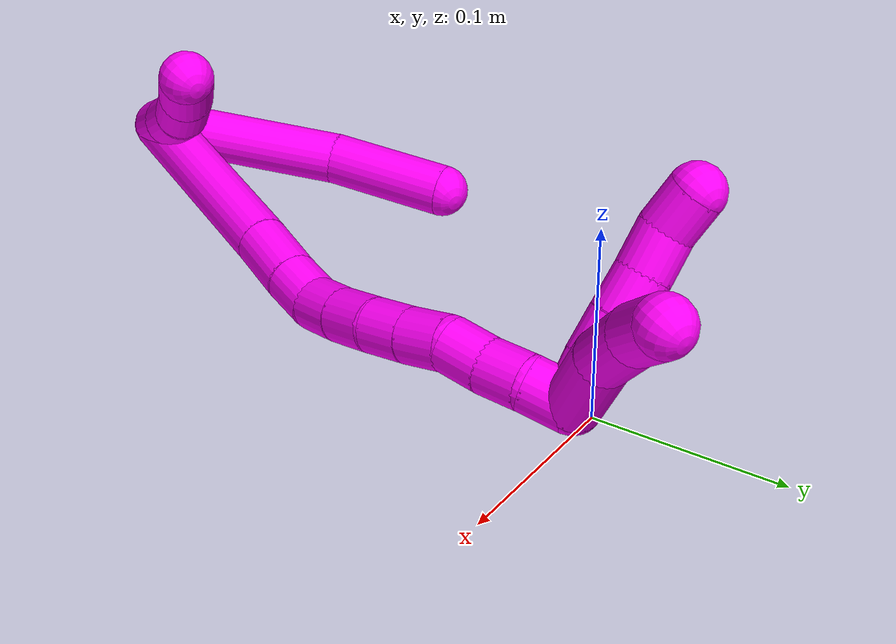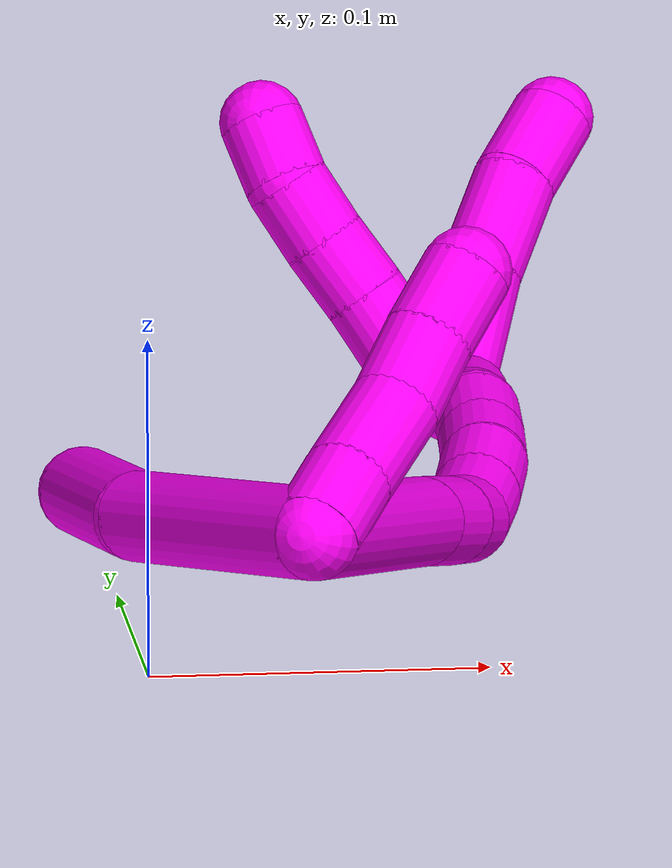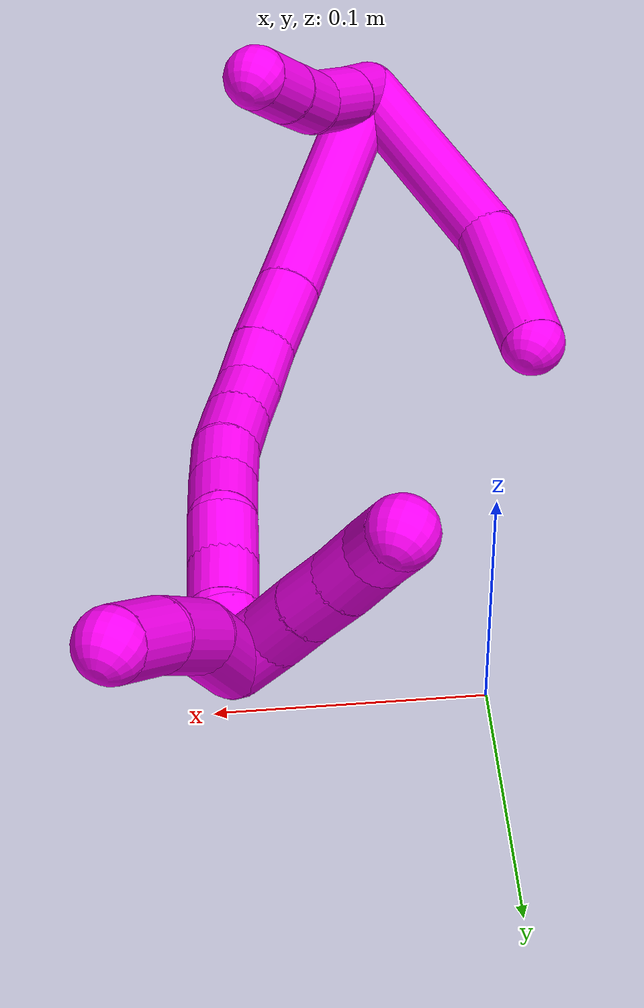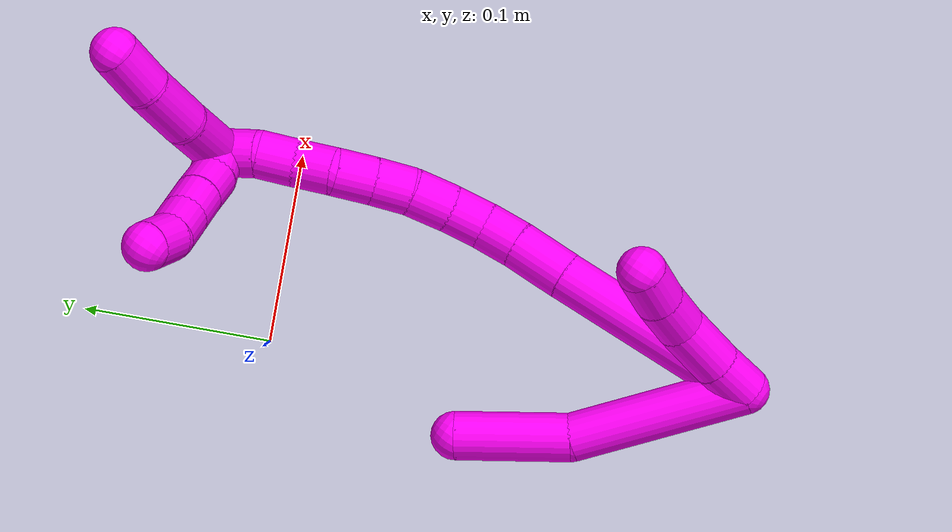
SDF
<sdf version="1.7">
 <world name="default">
  <model name="10">
   <static>0</static>
   <link name="10">
    <collision name="collision-cylinder-e_1_2_8">
     <pose>-0.027319 0.021123 -0.029589 -2.52162 -0.644423 1.61216</pose>
     <geometry><cylinder><radius>0.0125</radius><length>0.09095</length></cylinder></geometry>
     <surface>
      <friction><ode><mu>1.16</mu><mu2>1.16</mu2><slip1>0</slip1><slip2>0</slip2></ode></friction>
      <contact><ode><kp>1e+06</kp><kd>1</kd><max_vel>0</max_vel><min_depth>0.001</min_depth></ode></contact>
     </surface>
    </collision>
    <visual name="visual-cylinder-e_1_2_8">
     <pose>-0.027319 0.021123 -0.029589 -2.52162 -0.644423 1.61216</pose>
     <geometry><cylinder><radius>0.0125</radius><length>0.09095</length></cylinder></geometry>
     <material><ambient>1 0 0.964706 1</ambient></material>
    </visual>
    <collision name="collision-cylinder-e_2_8_6">
     <pose>-0.066333 0.053496 -0.083843 -2.71363 -0.407299 1.51987</pose>
     <geometry><cylinder><radius>0.0125</radius><length>0.05905</length></cylinder></geometry>
     <surface>
      <friction><ode><mu>1.16</mu><mu2>1.16</mu2><slip1>0</slip1><slip2>0</slip2></ode></friction>
      <contact><ode><kp>1e+06</kp><kd>1</kd><max_vel>0</max_vel><min_depth>0.001</min_depth></ode></contact>
     </surface>
    </collision>
    <visual name="visual-cylinder-e_2_8_6">
     <pose>-0.066333 0.053496 -0.083843 -2.71363 -0.407299 1.51987</pose>
     <geometry><cylinder><radius>0.0125</radius><length>0.05905</length></cylinder></geometry>
     <material><ambient>1 0 0.964706 1</ambient></material>
    </visual>
    <collision name="collision-cylinder-e_1_2_9">
     <pose>0.005409 0.00431 -0.009236 -2.70494 0.487879 -1.68552</pose>
     <geometry><cylinder><radius>0.0125</radius><length>0.023076</length></cylinder></geometry>
     <surface>
      <friction><ode><mu>1.16</mu><mu2>1.16</mu2><slip1>0</slip1><slip2>0</slip2></ode></friction>
      <contact><ode><kp>1e+06</kp><kd>1</kd><max_vel>0</max_vel><min_depth>0.001</min_depth></ode></contact>
     </surface>
    </collision>
    <visual name="visual-cylinder-e_1_2_9">
     <pose>0.005409 0.00431 -0.009236 -2.70494 0.487879 -1.68552</pose>
     <geometry><cylinder><radius>0.0125</radius><length>0.023076</length></cylinder></geometry>
     <material><ambient>1 0 0.964706 1</ambient></material>
    </visual>
    <collision name="collision-cylinder-e_2_9_10">
     <pose>0.018757 0.014049 -0.030415 -2.71499 0.544245 -1.82146</pose>
     <geometry><cylinder><radius>0.0125</radius><length>0.03067</length></cylinder></geometry>
     <surface>
      <friction><ode><mu>1.16</mu><mu2>1.16</mu2><slip1>0</slip1><slip2>0</slip2></ode></friction>
      <contact><ode><kp>1e+06</kp><kd>1</kd><max_vel>0</max_vel><min_depth>0.001</min_depth></ode></contact>
     </surface>
    </collision>
    <visual name="visual-cylinder-e_2_9_10">
     <pose>0.018757 0.014049 -0.030415 -2.71499 0.544245 -1.82146</pose>
     <geometry><cylinder><radius>0.0125</radius><length>0.03067</length></cylinder></geometry>
     <material><ambient>1 0 0.964706 1</ambient></material>
    </visual>
    <collision name="collision-cylinder-e_3_10_11">
     <pose>0.034193 0.024958 -0.04936 -2.47749 0.700427 -1.62838</pose>
     <geometry><cylinder><radius>0.0125</radius><length>0.023257</length></cylinder></geometry>
     <surface>
      <friction><ode><mu>1.16</mu><mu2>1.16</mu2><slip1>0</slip1><slip2>0</slip2></ode></friction>
      <contact><ode><kp>1e+06</kp><kd>1</kd><max_vel>0</max_vel><min_depth>0.001</min_depth></ode></contact>
     </surface>
    </collision>
    <visual name="visual-cylinder-e_3_10_11">
     <pose>0.034193 0.024958 -0.04936 -2.47749 0.700427 -1.62838</pose>
     <geometry><cylinder><radius>0.0125</radius><length>0.023257</length></cylinder></geometry>
     <material><ambient>1 0 0.964706 1</ambient></material>
    </visual>
    <collision name="collision-cylinder-e_4_11_5">
     <pose>0.049815 0.035349 -0.062845 -2.49334 0.785013 -1.77809</pose>
     <geometry><cylinder><radius>0.0125</radius><length>0.022996</length></cylinder></geometry>
     <surface>
      <friction><ode><mu>1.16</mu><mu2>1.16</mu2><slip1>0</slip1><slip2>0</slip2></ode></friction>
      <contact><ode><kp>1e+06</kp><kd>1</kd><max_vel>0</max_vel><min_depth>0.001</min_depth></ode></contact>
     </surface>
    </collision>
    <visual name="visual-cylinder-e_4_11_5">
     <pose>0.049815 0.035349 -0.062845 -2.49334 0.785013 -1.77809</pose>
     <geometry><cylinder><radius>0.0125</radius><length>0.022996</length></cylinder></geometry>
     <material><ambient>1 0 0.964706 1</ambient></material>
    </visual>
    <collision name="collision-cylinder-e_1_2_12">
     <pose>-0.00212 -0.000241 -0.053875 3.13712 -0.039333 -2.91525</pose>
     <geometry><cylinder><radius>0.0125</radius><length>0.107835</length></cylinder></geometry>
     <surface>
      <friction><ode><mu>1.16</mu><mu2>1.16</mu2><slip1>0</slip1><slip2>0</slip2></ode></friction>
      <contact><ode><kp>1e+06</kp><kd>1</kd><max_vel>0</max_vel><min_depth>0.001</min_depth></ode></contact>
     </surface>
    </collision>
    <visual name="visual-cylinder-e_1_2_12">
     <pose>-0.00212 -0.000241 -0.053875 3.13712 -0.039333 -2.91525</pose>
     <geometry><cylinder><radius>0.0125</radius><length>0.107835</length></cylinder></geometry>
     <material><ambient>1 0 0.964706 1</ambient></material>
    </visual>
    <collision name="collision-cylinder-e_2_12_13">
     <pose>-0.004773 -0.000942 -0.122334 3.11005 -0.036463 -1.71515</pose>
     <geometry><cylinder><radius>0.0125</radius><length>0.029201</length></cylinder></geometry>
     <surface>
      <friction><ode><mu>1.16</mu><mu2>1.16</mu2><slip1>0</slip1><slip2>0</slip2></ode></friction>
      <contact><ode><kp>1e+06</kp><kd>1</kd><max_vel>0</max_vel><min_depth>0.001</min_depth></ode></contact>
     </surface>
    </collision>
    <visual name="visual-cylinder-e_2_12_13">
     <pose>-0.004773 -0.000942 -0.122334 3.11005 -0.036463 -1.71515</pose>
     <geometry><cylinder><radius>0.0125</radius><length>0.029201</length></cylinder></geometry>
     <material><ambient>1 0 0.964706 1</ambient></material>
    </visual>
    <collision name="collision-cylinder-e_3_13_14">
     <pose>-0.006108 -0.001251 -0.14701 -3.12664 -0.07944 2.76967</pose>
     <geometry><cylinder><radius>0.0125</radius><length>0.020251</length></cylinder></geometry>
     <surface>
      <friction><ode><mu>1.16</mu><mu2>1.16</mu2><slip1>0</slip1><slip2>0</slip2></ode></friction>
      <contact><ode><kp>1e+06</kp><kd>1</kd><max_vel>0</max_vel><min_depth>0.001</min_depth></ode></contact>
     </surface>
    </collision>
    <visual name="visual-cylinder-e_3_13_14">
     <pose>-0.006108 -0.001251 -0.14701 -3.12664 -0.07944 2.76967</pose>
     <geometry><cylinder><radius>0.0125</radius><length>0.020251</length></cylinder></geometry>
     <material><ambient>1 0 0.964706 1</ambient></material>
    </visual>
    <collision name="collision-cylinder-e_4_14_15">
     <pose>-0.006046 0.002004 -0.166681 -2.82823 0.085786 -0.53055</pose>
     <geometry><cylinder><radius>0.0125</radius><length>0.020212</length></cylinder></geometry>
     <surface>
      <friction><ode><mu>1.16</mu><mu2>1.16</mu2><slip1>0</slip1><slip2>0</slip2></ode></friction>
      <contact><ode><kp>1e+06</kp><kd>1</kd><max_vel>0</max_vel><min_depth>0.001</min_depth></ode></contact>
     </surface>
    </collision>
    <visual name="visual-cylinder-e_4_14_15">
     <pose>-0.006046 0.002004 -0.166681 -2.82823 0.085786 -0.53055</pose>
     <geometry><cylinder><radius>0.0125</radius><length>0.020212</length></cylinder></geometry>
     <material><ambient>1 0 0.964706 1</ambient></material>
    </visual>
    <collision name="collision-cylinder-e_5_15_16">
     <pose>-0.004281 0.00922 -0.186274 -2.75194 0.082892 -0.414284</pose>
     <geometry><cylinder><radius>0.0125</radius><length>0.021726</length></cylinder></geometry>
     <surface>
      <friction><ode><mu>1.16</mu><mu2>1.16</mu2><slip1>0</slip1><slip2>0</slip2></ode></friction>
      <contact><ode><kp>1e+06</kp><kd>1</kd><max_vel>0</max_vel><min_depth>0.001</min_depth></ode></contact>
     </surface>
    </collision>
    <visual name="visual-cylinder-e_5_15_16">
     <pose>-0.004281 0.00922 -0.186274 -2.75194 0.082892 -0.414284</pose>
     <geometry><cylinder><radius>0.0125</radius><length>0.021726</length></cylinder></geometry>
     <material><ambient>1 0 0.964706 1</ambient></material>
    </visual>
    <collision name="collision-cylinder-e_6_16_17">
     <pose>-0.004062 0.017468 -0.205388 -2.71497 -0.06795 0.311281</pose>
     <geometry><cylinder><radius>0.0125</radius><length>0.020037</length></cylinder></geometry>
     <surface>
      <friction><ode><mu>1.16</mu><mu2>1.16</mu2><slip1>0</slip1><slip2>0</slip2></ode></friction>
      <contact><ode><kp>1e+06</kp><kd>1</kd><max_vel>0</max_vel><min_depth>0.001</min_depth></ode></contact>
     </surface>
    </collision>
    <visual name="visual-cylinder-e_6_16_17">
     <pose>-0.004062 0.017468 -0.205388 -2.71497 -0.06795 0.311281</pose>
     <geometry><cylinder><radius>0.0125</radius><length>0.020037</length></cylinder></geometry>
     <material><ambient>1 0 0.964706 1</ambient></material>
    </visual>
    <collision name="collision-cylinder-e_7_17_18">
     <pose>-0.00544 0.02634 -0.223612 -2.66288 -0.06782 0.276243</pose>
     <geometry><cylinder><radius>0.0125</radius><length>0.020609</length></cylinder></geometry>
     <surface>
      <friction><ode><mu>1.16</mu><mu2>1.16</mu2><slip1>0</slip1><slip2>0</slip2></ode></friction>
      <contact><ode><kp>1e+06</kp><kd>1</kd><max_vel>0</max_vel><min_depth>0.001</min_depth></ode></contact>
     </surface>
    </collision>
    <visual name="visual-cylinder-e_7_17_18">
     <pose>-0.00544 0.02634 -0.223612 -2.66288 -0.06782 0.276243</pose>
     <geometry><cylinder><radius>0.0125</radius><length>0.020609</length></cylinder></geometry>
     <material><ambient>1 0 0.964706 1</ambient></material>
    </visual>
    <collision name="collision-cylinder-e_8_18_19">
     <pose>-0.008977 0.033255 -0.242078 -2.91235 -0.287702 1.79848</pose>
     <geometry><cylinder><radius>0.0125</radius><length>0.020006</length></cylinder></geometry>
     <surface>
      <friction><ode><mu>1.16</mu><mu2>1.16</mu2><slip1>0</slip1><slip2>0</slip2></ode></friction>
      <contact><ode><kp>1e+06</kp><kd>1</kd><max_vel>0</max_vel><min_depth>0.001</min_depth></ode></contact>
     </surface>
    </collision>
    <visual name="visual-cylinder-e_8_18_19">
     <pose>-0.008977 0.033255 -0.242078 -2.91235 -0.287702 1.79848</pose>
     <geometry><cylinder><radius>0.0125</radius><length>0.020006</length></cylinder></geometry>
     <material><ambient>1 0 0.964706 1</ambient></material>
    </visual>
    <collision name="collision-cylinder-e_9_19_20">
     <pose>-0.013736 0.038584 -0.260728 -2.81536 -0.193056 1.06362</pose>
     <geometry><cylinder><radius>0.0125</radius><length>0.020028</length></cylinder></geometry>
     <surface>
      <friction><ode><mu>1.16</mu><mu2>1.16</mu2><slip1>0</slip1><slip2>0</slip2></ode></friction>
      <contact><ode><kp>1e+06</kp><kd>1</kd><max_vel>0</max_vel><min_depth>0.001</min_depth></ode></contact>
     </surface>
    </collision>
    <visual name="visual-cylinder-e_9_19_20">
     <pose>-0.013736 0.038584 -0.260728 -2.81536 -0.193056 1.06362</pose>
     <geometry><cylinder><radius>0.0125</radius><length>0.020028</length></cylinder></geometry>
     <material><ambient>1 0 0.964706 1</ambient></material>
    </visual>
    <collision name="collision-cylinder-e_10_20_1">
     <pose>-0.020202 0.044248 -0.278639 -2.85719 -0.469302 2.06237</pose>
     <geometry><cylinder><radius>0.0125</radius><length>0.020096</length></cylinder></geometry>
     <surface>
      <friction><ode><mu>1.16</mu><mu2>1.16</mu2><slip1>0</slip1><slip2>0</slip2></ode></friction>
      <contact><ode><kp>1e+06</kp><kd>1</kd><max_vel>0</max_vel><min_depth>0.001</min_depth></ode></contact>
     </surface>
    </collision>
    <visual name="visual-cylinder-e_10_20_1">
     <pose>-0.020202 0.044248 -0.278639 -2.85719 -0.469302 2.06237</pose>
     <geometry><cylinder><radius>0.0125</radius><length>0.020096</length></cylinder></geometry>
     <material><ambient>1 0 0.964706 1</ambient></material>
    </visual>
    <collision name="collision-cylinder-e_1_1_21">
     <pose>-0.011584 0.060059 -0.295051 -2.10194 0.706525 -1.14466</pose>
     <geometry><cylinder><radius>0.0125</radius><length>0.040547</length></cylinder></geometry>
     <surface>
      <friction><ode><mu>1.16</mu><mu2>1.16</mu2><slip1>0</slip1><slip2>0</slip2></ode></friction>
      <contact><ode><kp>1e+06</kp><kd>1</kd><max_vel>0</max_vel><min_depth>0.001</min_depth></ode></contact>
     </surface>
    </collision>
    <visual name="visual-cylinder-e_1_1_21">
     <pose>-0.011584 0.060059 -0.295051 -2.10194 0.706525 -1.14466</pose>
     <geometry><cylinder><radius>0.0125</radius><length>0.040547</length></cylinder></geometry>
     <material><ambient>1 0 0.964706 1</ambient></material>
    </visual>
    <collision name="collision-cylinder-e_2_21_22">
     <pose>0.011544 0.082135 -0.312286 -2.39155 0.658612 -1.42988</pose>
     <geometry><cylinder><radius>0.0125</radius><length>0.032571</length></cylinder></geometry>
     <surface>
      <friction><ode><mu>1.16</mu><mu2>1.16</mu2><slip1>0</slip1><slip2>0</slip2></ode></friction>
      <contact><ode><kp>1e+06</kp><kd>1</kd><max_vel>0</max_vel><min_depth>0.001</min_depth></ode></contact>
     </surface>
    </collision>
    <visual name="visual-cylinder-e_2_21_22">
     <pose>0.011544 0.082135 -0.312286 -2.39155 0.658612 -1.42988</pose>
     <geometry><cylinder><radius>0.0125</radius><length>0.032571</length></cylinder></geometry>
     <material><ambient>1 0 0.964706 1</ambient></material>
    </visual>
    <collision name="collision-cylinder-e_3_22_4">
     <pose>0.029719 0.096373 -0.330846 -2.60301 0.656898 -1.78014</pose>
     <geometry><cylinder><radius>0.0125</radius><length>0.026881</length></cylinder></geometry>
     <surface>
      <friction><ode><mu>1.16</mu><mu2>1.16</mu2><slip1>0</slip1><slip2>0</slip2></ode></friction>
      <contact><ode><kp>1e+06</kp><kd>1</kd><max_vel>0</max_vel><min_depth>0.001</min_depth></ode></contact>
     </surface>
    </collision>
    <visual name="visual-cylinder-e_3_22_4">
     <pose>0.029719 0.096373 -0.330846 -2.60301 0.656898 -1.78014</pose>
     <geometry><cylinder><radius>0.0125</radius><length>0.026881</length></cylinder></geometry>
     <material><ambient>1 0 0.964706 1</ambient></material>
    </visual>
    <collision name="collision-cylinder-e_1_1_23">
     <pose>-0.025338 0.056116 -0.283752 -1.21374 -0.059256 0.041146</pose>
     <geometry><cylinder><radius>0.0125</radius><length>0.02</length></cylinder></geometry>
     <surface>
      <friction><ode><mu>1.16</mu><mu2>1.16</mu2><slip1>0</slip1><slip2>0</slip2></ode></friction>
      <contact><ode><kp>1e+06</kp><kd>1</kd><max_vel>0</max_vel><min_depth>0.001</min_depth></ode></contact>
     </surface>
    </collision>
    <visual name="visual-cylinder-e_1_1_23">
     <pose>-0.025338 0.056116 -0.283752 -1.21374 -0.059256 0.041146</pose>
     <geometry><cylinder><radius>0.0125</radius><length>0.02</length></cylinder></geometry>
     <material><ambient>1 0 0.964706 1</ambient></material>
    </visual>
    <collision name="collision-cylinder-e_2_23_24">
     <pose>-0.025096 0.075328 -0.278817 -1.42525 0.083566 -0.072221</pose>
     <geometry><cylinder><radius>0.0125</radius><length>0.02</length></cylinder></geometry>
     <surface>
      <friction><ode><mu>1.16</mu><mu2>1.16</mu2><slip1>0</slip1><slip2>0</slip2></ode></friction>
      <contact><ode><kp>1e+06</kp><kd>1</kd><max_vel>0</max_vel><min_depth>0.001</min_depth></ode></contact>
     </surface>
    </collision>
    <visual name="visual-cylinder-e_2_23_24">
     <pose>-0.025096 0.075328 -0.278817 -1.42525 0.083566 -0.072221</pose>
     <geometry><cylinder><radius>0.0125</radius><length>0.02</length></cylinder></geometry>
     <material><ambient>1 0 0.964706 1</ambient></material>
    </visual>
    <collision name="collision-cylinder-e_3_24_25">
     <pose>-0.023884 0.095037 -0.275682 -1.40089 0.037666 -0.031755</pose>
     <geometry><cylinder><radius>0.0125</radius><length>0.02</length></cylinder></geometry>
     <surface>
      <friction><ode><mu>1.16</mu><mu2>1.16</mu2><slip1>0</slip1><slip2>0</slip2></ode></friction>
      <contact><ode><kp>1e+06</kp><kd>1</kd><max_vel>0</max_vel><min_depth>0.001</min_depth></ode></contact>
     </surface>
    </collision>
    <visual name="visual-cylinder-e_3_24_25">
     <pose>-0.023884 0.095037 -0.275682 -1.40089 0.037666 -0.031755</pose>
     <geometry><cylinder><radius>0.0125</radius><length>0.02</length></cylinder></geometry>
     <material><ambient>1 0 0.964706 1</ambient></material>
    </visual>
    <collision name="collision-cylinder-e_4_25_26">
     <pose>-0.02251 0.114685 -0.272265 -1.39633 0.099935 -0.083882</pose>
     <geometry><cylinder><radius>0.0125</radius><length>0.02</length></cylinder></geometry>
     <surface>
      <friction><ode><mu>1.16</mu><mu2>1.16</mu2><slip1>0</slip1><slip2>0</slip2></ode></friction>
      <contact><ode><kp>1e+06</kp><kd>1</kd><max_vel>0</max_vel><min_depth>0.001</min_depth></ode></contact>
     </surface>
    </collision>
    <visual name="visual-cylinder-e_4_25_26">
     <pose>-0.02251 0.114685 -0.272265 -1.39633 0.099935 -0.083882</pose>
     <geometry><cylinder><radius>0.0125</radius><length>0.02</length></cylinder></geometry>
     <material><ambient>1 0 0.964706 1</ambient></material>
    </visual>
    <collision name="collision-cylinder-e_5_26_3">
     <pose>-0.0195 0.134186 -0.271892 -1.70939 0.202639 -0.232612</pose>
     <geometry><cylinder><radius>0.0125</radius><length>0.02</length></cylinder></geometry>
     <surface>
      <friction><ode><mu>1.16</mu><mu2>1.16</mu2><slip1>0</slip1><slip2>0</slip2></ode></friction>
      <contact><ode><kp>1e+06</kp><kd>1</kd><max_vel>0</max_vel><min_depth>0.001</min_depth></ode></contact>
     </surface>
    </collision>
    <visual name="visual-cylinder-e_5_26_3">
     <pose>-0.0195 0.134186 -0.271892 -1.70939 0.202639 -0.232612</pose>
     <geometry><cylinder><radius>0.0125</radius><length>0.02</length></cylinder></geometry>
     <material><ambient>1 0 0.964706 1</ambient></material>
    </visual>
    <collision name="collision-sphere-3">
     <pose>-0.017487 0.143887 -0.273245 0 -0 0</pose>
     <geometry><sphere><radius>0.0125</radius></sphere></geometry>
     <surface>
      <friction><ode><mu>1.16</mu><mu2>1.16</mu2><slip1>0</slip1><slip2>0</slip2></ode></friction>
      <contact><ode><kp>1e+06</kp><kd>1</kd><max_vel>0</max_vel><min_depth>0.001</min_depth></ode></contact>
     </surface>
    </collision>
    <visual name="visual-sphere-3">
     <pose>-0.017487 0.143887 -0.273245 0 -0 0</pose>
     <geometry><sphere><radius>0.0125</radius></sphere></geometry>
     <material><ambient>1 0 0.964706 1</ambient></material>
    </visual>
    <collision name="collision-sphere-26">
     <pose>-0.021512 0.124484 -0.270538 0 -0 0</pose>
     <geometry><sphere><radius>0.0125</radius></sphere></geometry>
     <surface>
      <friction><ode><mu>1.16</mu><mu2>1.16</mu2><slip1>0</slip1><slip2>0</slip2></ode></friction>
      <contact><ode><kp>1e+06</kp><kd>1</kd><max_vel>0</max_vel><min_depth>0.001</min_depth></ode></contact>
     </surface>
    </collision>
    <visual name="visual-sphere-26">
     <pose>-0.021512 0.124484 -0.270538 0 -0 0</pose>
     <geometry><sphere><radius>0.0125</radius></sphere></geometry>
     <material><ambient>1 0 0.964706 1</ambient></material>
    </visual>
    <collision name="collision-sphere-25">
     <pose>-0.023508 0.104886 -0.273993 0 -0 0</pose>
     <geometry><sphere><radius>0.0125</radius></sphere></geometry>
     <surface>
      <friction><ode><mu>1.16</mu><mu2>1.16</mu2><slip1>0</slip1><slip2>0</slip2></ode></friction>
      <contact><ode><kp>1e+06</kp><kd>1</kd><max_vel>0</max_vel><min_depth>0.001</min_depth></ode></contact>
     </surface>
    </collision>
    <visual name="visual-sphere-25">
     <pose>-0.023508 0.104886 -0.273993 0 -0 0</pose>
     <geometry><sphere><radius>0.0125</radius></sphere></geometry>
     <material><ambient>1 0 0.964706 1</ambient></material>
    </visual>
    <collision name="collision-sphere-24">
     <pose>-0.024261 0.085188 -0.277372 0 -0 0</pose>
     <geometry><sphere><radius>0.0125</radius></sphere></geometry>
     <surface>
      <friction><ode><mu>1.16</mu><mu2>1.16</mu2><slip1>0</slip1><slip2>0</slip2></ode></friction>
      <contact><ode><kp>1e+06</kp><kd>1</kd><max_vel>0</max_vel><min_depth>0.001</min_depth></ode></contact>
     </surface>
    </collision>
    <visual name="visual-sphere-24">
     <pose>-0.024261 0.085188 -0.277372 0 -0 0</pose>
     <geometry><sphere><radius>0.0125</radius></sphere></geometry>
     <material><ambient>1 0 0.964706 1</ambient></material>
    </visual>
    <collision name="collision-sphere-23">
     <pose>-0.02593 0.065469 -0.280262 0 -0 0</pose>
     <geometry><sphere><radius>0.0125</radius></sphere></geometry>
     <surface>
      <friction><ode><mu>1.16</mu><mu2>1.16</mu2><slip1>0</slip1><slip2>0</slip2></ode></friction>
      <contact><ode><kp>1e+06</kp><kd>1</kd><max_vel>0</max_vel><min_depth>0.001</min_depth></ode></contact>
     </surface>
    </collision>
    <visual name="visual-sphere-23">
     <pose>-0.02593 0.065469 -0.280262 0 -0 0</pose>
     <geometry><sphere><radius>0.0125</radius></sphere></geometry>
     <material><ambient>1 0 0.964706 1</ambient></material>
    </visual>
    <collision name="collision-sphere-4">
     <pose>0.037927 0.101833 -0.339983 0 -0 0</pose>
     <geometry><sphere><radius>0.0125</radius></sphere></geometry>
     <surface>
      <friction><ode><mu>1.16</mu><mu2>1.16</mu2><slip1>0</slip1><slip2>0</slip2></ode></friction>
      <contact><ode><kp>1e+06</kp><kd>1</kd><max_vel>0</max_vel><min_depth>0.001</min_depth></ode></contact>
     </surface>
    </collision>
    <visual name="visual-sphere-4">
     <pose>0.037927 0.101833 -0.339983 0 -0 0</pose>
     <geometry><sphere><radius>0.0125</radius></sphere></geometry>
     <material><ambient>1 0 0.964706 1</ambient></material>
    </visual>
    <collision name="collision-sphere-22">
     <pose>0.021511 0.090914 -0.321709 0 -0 0</pose>
     <geometry><sphere><radius>0.0125</radius></sphere></geometry>
     <surface>
      <friction><ode><mu>1.16</mu><mu2>1.16</mu2><slip1>0</slip1><slip2>0</slip2></ode></friction>
      <contact><ode><kp>1e+06</kp><kd>1</kd><max_vel>0</max_vel><min_depth>0.001</min_depth></ode></contact>
     </surface>
    </collision>
    <visual name="visual-sphere-22">
     <pose>0.021511 0.090914 -0.321709 0 -0 0</pose>
     <geometry><sphere><radius>0.0125</radius></sphere></geometry>
     <material><ambient>1 0 0.964706 1</ambient></material>
    </visual>
    <collision name="collision-sphere-21">
     <pose>0.001577 0.073355 -0.302862 0 -0 0</pose>
     <geometry><sphere><radius>0.0125</radius></sphere></geometry>
     <surface>
      <friction><ode><mu>1.16</mu><mu2>1.16</mu2><slip1>0</slip1><slip2>0</slip2></ode></friction>
      <contact><ode><kp>1e+06</kp><kd>1</kd><max_vel>0</max_vel><min_depth>0.001</min_depth></ode></contact>
     </surface>
    </collision>
    <visual name="visual-sphere-21">
     <pose>0.001577 0.073355 -0.302862 0 -0 0</pose>
     <geometry><sphere><radius>0.0125</radius></sphere></geometry>
     <material><ambient>1 0 0.964706 1</ambient></material>
    </visual>
    <collision name="collision-sphere-1">
     <pose>-0.024746 0.046763 -0.287241 0 -0 0</pose>
     <geometry><sphere><radius>0.0125</radius></sphere></geometry>
     <surface>
      <friction><ode><mu>1.16</mu><mu2>1.16</mu2><slip1>0</slip1><slip2>0</slip2></ode></friction>
      <contact><ode><kp>1e+06</kp><kd>1</kd><max_vel>0</max_vel><min_depth>0.001</min_depth></ode></contact>
     </surface>
    </collision>
    <visual name="visual-sphere-1">
     <pose>-0.024746 0.046763 -0.287241 0 -0 0</pose>
     <geometry><sphere><radius>0.0125</radius></sphere></geometry>
     <material><ambient>1 0 0.964706 1</ambient></material>
    </visual>
    <collision name="collision-sphere-11">
     <pose>0.041688 0.030438 -0.056361 0 -0 0</pose>
     <geometry><sphere><radius>0.0125</radius></sphere></geometry>
     <surface>
      <friction><ode><mu>1.16</mu><mu2>1.16</mu2><slip1>0</slip1><slip2>0</slip2></ode></friction>
      <contact><ode><kp>1e+06</kp><kd>1</kd><max_vel>0</max_vel><min_depth>0.001</min_depth></ode></contact>
     </surface>
    </collision>
    <visual name="visual-sphere-11">
     <pose>0.041688 0.030438 -0.056361 0 -0 0</pose>
     <geometry><sphere><radius>0.0125</radius></sphere></geometry>
     <material><ambient>1 0 0.964706 1</ambient></material>
    </visual>
    <collision name="collision-sphere-10">
     <pose>0.026697 0.019478 -0.042359 0 -0 0</pose>
     <geometry><sphere><radius>0.0125</radius></sphere></geometry>
     <surface>
      <friction><ode><mu>1.16</mu><mu2>1.16</mu2><slip1>0</slip1><slip2>0</slip2></ode></friction>
      <contact><ode><kp>1e+06</kp><kd>1</kd><max_vel>0</max_vel><min_depth>0.001</min_depth></ode></contact>
     </surface>
    </collision>
    <visual name="visual-sphere-10">
     <pose>0.026697 0.019478 -0.042359 0 -0 0</pose>
     <geometry><sphere><radius>0.0125</radius></sphere></geometry>
     <material><ambient>1 0 0.964706 1</ambient></material>
    </visual>
    <collision name="collision-sphere-6">
     <pose>-0.078029 0.064747 -0.108507 0 -0 0</pose>
     <geometry><sphere><radius>0.0125</radius></sphere></geometry>
     <surface>
      <friction><ode><mu>1.16</mu><mu2>1.16</mu2><slip1>0</slip1><slip2>0</slip2></ode></friction>
      <contact><ode><kp>1e+06</kp><kd>1</kd><max_vel>0</max_vel><min_depth>0.001</min_depth></ode></contact>
     </surface>
    </collision>
    <visual name="visual-sphere-6">
     <pose>-0.078029 0.064747 -0.108507 0 -0 0</pose>
     <geometry><sphere><radius>0.0125</radius></sphere></geometry>
     <material><ambient>1 0 0.964706 1</ambient></material>
    </visual>
    <collision name="collision-sphere-9">
     <pose>0.010817 0.008621 -0.018471 0 -0 0</pose>
     <geometry><sphere><radius>0.0125</radius></sphere></geometry>
     <surface>
      <friction><ode><mu>1.16</mu><mu2>1.16</mu2><slip1>0</slip1><slip2>0</slip2></ode></friction>
      <contact><ode><kp>1e+06</kp><kd>1</kd><max_vel>0</max_vel><min_depth>0.001</min_depth></ode></contact>
     </surface>
    </collision>
    <visual name="visual-sphere-9">
     <pose>0.010817 0.008621 -0.018471 0 -0 0</pose>
     <geometry><sphere><radius>0.0125</radius></sphere></geometry>
     <material><ambient>1 0 0.964706 1</ambient></material>
    </visual>
    <collision name="collision-sphere-2">
     <geometry><sphere><radius>0.0125</radius></sphere></geometry>
     <surface>
      <friction><ode><mu>1.16</mu><mu2>1.16</mu2><slip1>0</slip1><slip2>0</slip2></ode></friction>
      <contact><ode><kp>1e+06</kp><kd>1</kd><max_vel>0</max_vel><min_depth>0.001</min_depth></ode></contact>
     </surface>
    </collision>
    <visual name="visual-sphere-2">
     <geometry><sphere><radius>0.0125</radius></sphere></geometry>
     <material><ambient>1 0 0.964706 1</ambient></material>
    </visual>
    <collision name="collision-sphere-19">
     <pose>-0.011815 0.035435 -0.251419 0 -0 0</pose>
     <geometry><sphere><radius>0.0125</radius></sphere></geometry>
     <surface>
      <friction><ode><mu>1.16</mu><mu2>1.16</mu2><slip1>0</slip1><slip2>0</slip2></ode></friction>
      <contact><ode><kp>1e+06</kp><kd>1</kd><max_vel>0</max_vel><min_depth>0.001</min_depth></ode></contact>
     </surface>
    </collision>
    <visual name="visual-sphere-19">
     <pose>-0.011815 0.035435 -0.251419 0 -0 0</pose>
     <geometry><sphere><radius>0.0125</radius></sphere></geometry>
     <material><ambient>1 0 0.964706 1</ambient></material>
    </visual>
    <collision name="collision-sphere-8">
     <pose>-0.054637 0.042245 -0.059178 0 -0 0</pose>
     <geometry><sphere><radius>0.0125</radius></sphere></geometry>
     <surface>
      <friction><ode><mu>1.16</mu><mu2>1.16</mu2><slip1>0</slip1><slip2>0</slip2></ode></friction>
      <contact><ode><kp>1e+06</kp><kd>1</kd><max_vel>0</max_vel><min_depth>0.001</min_depth></ode></contact>
     </surface>
    </collision>
    <visual name="visual-sphere-8">
     <pose>-0.054637 0.042245 -0.059178 0 -0 0</pose>
     <geometry><sphere><radius>0.0125</radius></sphere></geometry>
     <material><ambient>1 0 0.964706 1</ambient></material>
    </visual>
    <collision name="collision-sphere-5">
     <pose>0.057942 0.04026 -0.069328 0 -0 0</pose>
     <geometry><sphere><radius>0.0125</radius></sphere></geometry>
     <surface>
      <friction><ode><mu>1.16</mu><mu2>1.16</mu2><slip1>0</slip1><slip2>0</slip2></ode></friction>
      <contact><ode><kp>1e+06</kp><kd>1</kd><max_vel>0</max_vel><min_depth>0.001</min_depth></ode></contact>
     </surface>
    </collision>
    <visual name="visual-sphere-5">
     <pose>0.057942 0.04026 -0.069328 0 -0 0</pose>
     <geometry><sphere><radius>0.0125</radius></sphere></geometry>
     <material><ambient>1 0 0.964706 1</ambient></material>
    </visual>
    <collision name="collision-sphere-12">
     <pose>-0.00424 -0.000482 -0.107751 0 -0 0</pose>
     <geometry><sphere><radius>0.0125</radius></sphere></geometry>
     <surface>
      <friction><ode><mu>1.16</mu><mu2>1.16</mu2><slip1>0</slip1><slip2>0</slip2></ode></friction>
      <contact><ode><kp>1e+06</kp><kd>1</kd><max_vel>0</max_vel><min_depth>0.001</min_depth></ode></contact>
     </surface>
    </collision>
    <visual name="visual-sphere-12">
     <pose>-0.00424 -0.000482 -0.107751 0 -0 0</pose>
     <geometry><sphere><radius>0.0125</radius></sphere></geometry>
     <material><ambient>1 0 0.964706 1</ambient></material>
    </visual>
    <collision name="collision-sphere-13">
     <pose>-0.005305 -0.001402 -0.136917 0 -0 0</pose>
     <geometry><sphere><radius>0.0125</radius></sphere></geometry>
     <surface>
      <friction><ode><mu>1.16</mu><mu2>1.16</mu2><slip1>0</slip1><slip2>0</slip2></ode></friction>
      <contact><ode><kp>1e+06</kp><kd>1</kd><max_vel>0</max_vel><min_depth>0.001</min_depth></ode></contact>
     </surface>
    </collision>
    <visual name="visual-sphere-13">
     <pose>-0.005305 -0.001402 -0.136917 0 -0 0</pose>
     <geometry><sphere><radius>0.0125</radius></sphere></geometry>
     <material><ambient>1 0 0.964706 1</ambient></material>
    </visual>
    <collision name="collision-sphere-14">
     <pose>-0.006912 -0.0011 -0.157103 0 -0 0</pose>
     <geometry><sphere><radius>0.0125</radius></sphere></geometry>
     <surface>
      <friction><ode><mu>1.16</mu><mu2>1.16</mu2><slip1>0</slip1><slip2>0</slip2></ode></friction>
      <contact><ode><kp>1e+06</kp><kd>1</kd><max_vel>0</max_vel><min_depth>0.001</min_depth></ode></contact>
     </surface>
    </collision>
    <visual name="visual-sphere-14">
     <pose>-0.006912 -0.0011 -0.157103 0 -0 0</pose>
     <geometry><sphere><radius>0.0125</radius></sphere></geometry>
     <material><ambient>1 0 0.964706 1</ambient></material>
    </visual>
    <collision name="collision-sphere-15">
     <pose>-0.00518 0.005107 -0.17626 0 -0 0</pose>
     <geometry><sphere><radius>0.0125</radius></sphere></geometry>
     <surface>
      <friction><ode><mu>1.16</mu><mu2>1.16</mu2><slip1>0</slip1><slip2>0</slip2></ode></friction>
      <contact><ode><kp>1e+06</kp><kd>1</kd><max_vel>0</max_vel><min_depth>0.001</min_depth></ode></contact>
     </surface>
    </collision>
    <visual name="visual-sphere-15">
     <pose>-0.00518 0.005107 -0.17626 0 -0 0</pose>
     <geometry><sphere><radius>0.0125</radius></sphere></geometry>
     <material><ambient>1 0 0.964706 1</ambient></material>
    </visual>
    <collision name="collision-sphere-16">
     <pose>-0.003381 0.013332 -0.196288 0 -0 0</pose>
     <geometry><sphere><radius>0.0125</radius></sphere></geometry>
     <surface>
      <friction><ode><mu>1.16</mu><mu2>1.16</mu2><slip1>0</slip1><slip2>0</slip2></ode></friction>
      <contact><ode><kp>1e+06</kp><kd>1</kd><max_vel>0</max_vel><min_depth>0.001</min_depth></ode></contact>
     </surface>
    </collision>
    <visual name="visual-sphere-16">
     <pose>-0.003381 0.013332 -0.196288 0 -0 0</pose>
     <geometry><sphere><radius>0.0125</radius></sphere></geometry>
     <material><ambient>1 0 0.964706 1</ambient></material>
    </visual>
    <collision name="collision-sphere-17">
     <pose>-0.004742 0.021604 -0.214487 0 -0 0</pose>
     <geometry><sphere><radius>0.0125</radius></sphere></geometry>
     <surface>
      <friction><ode><mu>1.16</mu><mu2>1.16</mu2><slip1>0</slip1><slip2>0</slip2></ode></friction>
      <contact><ode><kp>1e+06</kp><kd>1</kd><max_vel>0</max_vel><min_depth>0.001</min_depth></ode></contact>
     </surface>
    </collision>
    <visual name="visual-sphere-17">
     <pose>-0.004742 0.021604 -0.214487 0 -0 0</pose>
     <geometry><sphere><radius>0.0125</radius></sphere></geometry>
     <material><ambient>1 0 0.964706 1</ambient></material>
    </visual>
    <collision name="collision-sphere-18">
     <pose>-0.006138 0.031076 -0.232737 0 -0 0</pose>
     <geometry><sphere><radius>0.0125</radius></sphere></geometry>
     <surface>
      <friction><ode><mu>1.16</mu><mu2>1.16</mu2><slip1>0</slip1><slip2>0</slip2></ode></friction>
      <contact><ode><kp>1e+06</kp><kd>1</kd><max_vel>0</max_vel><min_depth>0.001</min_depth></ode></contact>
     </surface>
    </collision>
    <visual name="visual-sphere-18">
     <pose>-0.006138 0.031076 -0.232737 0 -0 0</pose>
     <geometry><sphere><radius>0.0125</radius></sphere></geometry>
     <material><ambient>1 0 0.964706 1</ambient></material>
    </visual>
    <collision name="collision-sphere-20">
     <pose>-0.015657 0.041734 -0.270038 0 -0 0</pose>
     <geometry><sphere><radius>0.0125</radius></sphere></geometry>
     <surface>
      <friction><ode><mu>1.16</mu><mu2>1.16</mu2><slip1>0</slip1><slip2>0</slip2></ode></friction>
      <contact><ode><kp>1e+06</kp><kd>1</kd><max_vel>0</max_vel><min_depth>0.001</min_depth></ode></contact>
     </surface>
    </collision>
    <visual name="visual-sphere-20">
     <pose>-0.015657 0.041734 -0.270038 0 -0 0</pose>
     <geometry><sphere><radius>0.0125</radius></sphere></geometry>
     <material><ambient>1 0 0.964706 1</ambient></material>
    </visual>
    <inertial>
     <pose>-0.009524 0.036792 -0.152294 0 -0 0</pose>
     <mass>0.75</mass>
     <inertia>
      <ixx>-6.5e-05</ixx>
      <ixy>0</ixy>
      <ixz>0</ixz>
      <iyy>0.000193</iyy>
      <iyz>0</iyz>
      <izz>-6.1e-05</izz>
     </inertia>
    </inertial>
   </link>
   <pose>0.020987 -0.24224 0.09959 1.35483 -0.696386 -0.280198</pose>
  </model>
 </world>
</sdf>
